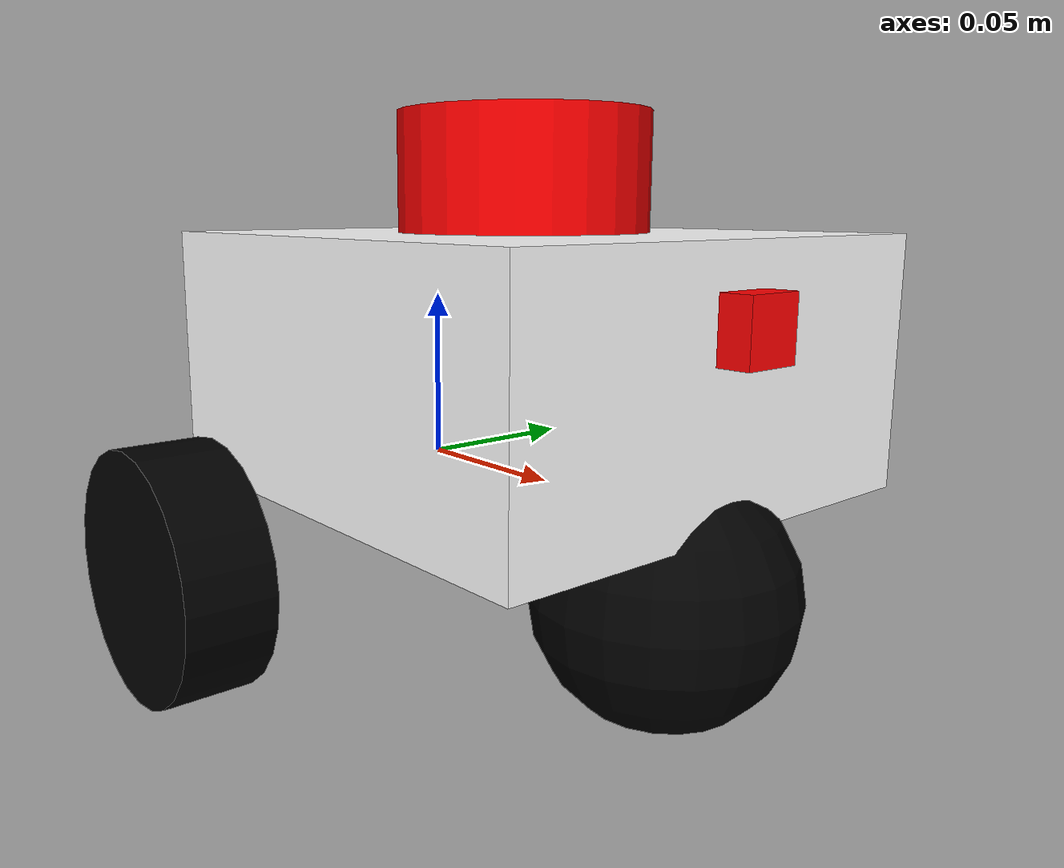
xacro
<!-- autoJetsonBot/src/robot_body/urdf/robot.xacro -->

<?xml version="1.0"?>
<robot xmlns:xacro="http://www.ros.org/wiki/xacro"  name="robot">

    <xacro:arg name='use_ros2_control' default='true'/>
    <xacro:arg name='sim_mode' default='false'/>

    <xacro:include filename="robot_core.xacro" />

    <xacro:if value="$(arg use_ros2_control)">
        <xacro:include filename="ros2_control.xacro" />
    </xacro:if>
    <xacro:unless value="$(arg use_ros2_control)">
        <xacro:include filename="gazebo_control.xacro" />
    </xacro:unless>

    <xacro:include filename="lidar.xacro" />

    <xacro:include filename="camera.xacro" />

</robot>

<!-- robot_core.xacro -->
<robot xmlns:xacro="http://www.ros.org/wiki/xacro" >

<xacro:include filename="inertial_macros.xacro" />

    <!-- COLORS FOR ROBOT PARTS -->
    <material name="grey">
        <color rgba="0.5 0.5 0.5 1"/>
    </material>
    <material name="red">
        <color rgba="1 0 0 1"/>
    </material>
    <material name="green">
        <color rgba="0 1 0 1"/>
    </material>
    <material name="blue">
        <color rgba="0 0 1 1"/>
    </material>
    <material name="yellow">
        <color rgba="1 1 0 1"/>
    </material>
    <material name="orange">
        <color rgba="1 0.5 0 1"/>
    </material>
    <material name="purple">
        <color rgba="0.5 0 0.5 1"/>
    </material>
    <material name="black">
        <color rgba="0 0 0 1"/>
    </material>
    <material name="white">
        <color rgba="1 1 1 1"/>
    </material>

    <!-- ROBOT BASE LINK -->
    <link name="base_link">
    </link>

    <!-- ROBOT CHASSIS LINK-->
    <joint name="chassis_joint" type="fixed">
        <origin xyz="-0.03 0 0" rpy="0 0 0"/>
        <parent link="base_link"/>
        <child link="chassis"/>
    </joint>

    <!-- ROBOT CHASSIS -->
    <link name="chassis">
        <visual>
            <origin xyz="0.0725 0 0.035" rpy="0 0 0"/>
            <geometry>
                <box size="0.145 0.14 0.07"/>
            </geometry>
            <material name="white"/>
        </visual>
        <collision>
            <origin xyz="0.0725 0 0.035" rpy="0 0 0"/>
            <geometry>
                <box size="0.145 0.14 0.07"/>
            </geometry>
        </collision>
        <xacro:inertial_box mass="0.5" x="0.145" y="0.14" z="0.07">
            <origin xyz="0.0725 0 0.035" rpy="0 0 0"/>
        </xacro:inertial_box>
    </link>
    <gazebo reference="chassis">
        <material>Gazebo/White</material>
    </gazebo>

    <!-- ROBOT WHEELS -->

    <!-- LEFT WHEEL -->
    <joint name="left_wheel_joint" type="continuous">
        <origin xyz="0 0.09 -0.02" rpy="-${pi/2} 0 0"/>
        <parent link="base_link"/>
        <child link="left_wheel"/>
        <axis xyz="0 0 1"/>
    </joint>

    <link name="left_wheel">
        <visual>
            <origin xyz="0 0 0" rpy="0 0 0"/>
            <geometry>
                <cylinder radius="0.035" length="0.027"/>
            </geometry>
            <material name="black"/>
        </visual>
        <collision>
            <origin xyz="0 0 0" rpy="0 0 0"/>
            <geometry>
                <cylinder radius="0.035" length="0.027"/>
            </geometry>
        </collision>
        <xacro:inertial_cylinder mass="0.1" length="0.027" radius="0.035">
            <origin xyz="0 0 0" rpy="0 0 0"/>
        </xacro:inertial_cylinder>

    </link>
    <gazebo reference="left_wheel">
        <material>Gazebo/Black</material>
    </gazebo>

    <!-- RIGHT WHEEL -->
    <joint name="right_wheel_joint" type="continuous">
        <origin xyz="0 -0.09 -0.02" rpy="${pi/2} 0 0"/>
        <parent link="base_link"/>
        <child link="right_wheel"/>
        <axis xyz="0 0 -1"/>
    </joint>

    <link name="right_wheel">
        <visual>
            <origin xyz="0 0 0" rpy="0 0 0"/>
            <geometry>
                <cylinder radius="0.035" length="0.025"/>
            </geometry>
            <material name="black"/>
        </visual>
        <collision>
            <origin xyz="0 0 0" rpy="0 0 0"/>
            <geometry>
                <cylinder radius="0.035" length="0.025"/>
            </geometry>
        </collision>
        <xacro:inertial_cylinder mass="0.1" length="0.025" radius="0.035">
            <origin xyz="0 0 0" rpy="0 0 0"/>
        </xacro:inertial_cylinder>
    </link>
    <gazebo reference="right_wheel">
        <material>Gazebo/Black</material>
    </gazebo>

    <!-- CASTER WHEEL -->
    <joint name="caster_wheel_joint" type="fixed">
        <origin xyz="0.095 0 -0.02" rpy="0 0 0"/>
        <parent link="base_link"/>
        <child link="caster_wheel"/>
    </joint>

    <link name="caster_wheel">
        <visual>
            <origin xyz="0 0 0" rpy="0 0 0"/>
            <geometry>
                <sphere radius="0.035"/>
            </geometry>
            <material name="black"/>
        </visual>
        <collision>
            <origin xyz="0 0 0" rpy="0 0 0"/>
            <geometry>
                <sphere radius="0.035"/>
            </geometry>
        </collision>
        <xacro:inertial_sphere mass="0.1" radius="0.035">
            <origin xyz="0 0 0" rpy="0 0 0"/>
        </xacro:inertial_sphere>
    </link>
    <gazebo reference="caster_wheel">
        <material>Gazebo/Black</material>
        <mu1 value="0.001"/>
        <mu2 value="0.001"/>
    </gazebo>

    <!-- ROBOT LIDAR -->
    <joint name="lidar_joint" type="fixed">
        <origin xyz="0.07 0 0.07" rpy="0 0 0"/>
        <parent link="chassis"/>
        <child link="lidar"/>
    </joint>

    <link name="lidar">
        <visual>
            <origin xyz="0 0 0" rpy="0 0 0"/>

            <geometry>
                <cylinder radius="0.035" length="0.065"/>
            </geometry>
            <material name="red"/>
        </visual>
        <collision>
            <origin xyz="0 0 0" rpy="0 0 0"/>

            <geometry>
                <cylinder radius="0.035" length="0.065"/>
            </geometry>
        </collision>
    </link>
    <gazebo reference="lidar">
        <material>Gazebo/Red</material>
    </gazebo>

</robot>

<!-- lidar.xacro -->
<robot xmlns:xacro="http://www.ros.org/wiki/xacro" >

    <!-- laser -->

    <joint name="laser_joint" type="fixed">
        <origin xyz="0.07 0 0.07" rpy="0 0 0"/>
        <parent link="chassis"/>
        <child link="laser_frame"/>
    </joint>

    <link name="laser_frame">
        <visual>
            <origin xyz="0 0 0" rpy="0 0 0"/>
            <geometry>
                <cylinder radius="0.035" length="0.065"/>
            </geometry>
            <material name="red"/>
        </visual>
        <collision>
            <origin xyz="0 0 0" rpy="0 0 0"/>
            <geometry>
                <cylinder radius="0.035" length="0.065"/>
            </geometry>
        </collision>
        <xacro:inertial_cylinder mass="0.1" radius="0.035" length="0.065">
            <origin xyz="0 0 0" rpy="0 0 0"/>
        </xacro:inertial_cylinder>
    </link>
    <gazebo reference="laser_frame">
        <sensor name="laser" type="ray">
            <pose>0 0 0 0 0 0</pose>
            <visualize>false</visualize>
            <update_rate>10</update_rate>
            <ray>
                <scan>
                    <horizontal>
                        <samples>360</samples>
                        <resolution>1</resolution>
                        <min_angle>-3.14</min_angle>
                        <max_angle>3.14</max_angle>
                    </horizontal>
                </scan>
                <range>
                    <min>0.2</min>
                    <max>12</max>
                    <resolution>0.01</resolution>
                </range>
                <noise>
                    <type>gaussian</type>
                    <mean>0.0</mean>
                    <stddev>0.01</stddev>
                </noise>
            </ray>
            <plugin name="gazebo_ros_laser" filename="libgazebo_ros_ray_sensor.so">
                <ros>
                    <argument>scan:=/scan</argument>
                </ros>
                <frameName>laser_frame</frameName>
                <output_type>sensor_msgs/LaserScan</output_type>
            </plugin>
        </sensor>
        <material>Gazebo/Red</material>
    </gazebo>

</robot>

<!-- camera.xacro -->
<!-- camera-->
<robot xmlns:xacro="http://www.ros.org/wiki/xacro" >

    <joint name="camera_joint" type="fixed">
        <origin xyz="0.1455 0 0.05" rpy="0 0 0"/>
        <parent link="chassis"/>
        <child link="camera_link"/>
    </joint>

    <link name="camera_link">
        <visual>
            <origin xyz="0 0 0" rpy="0 0 0"/>
            <geometry>
                <box size="0.017 0.017 0.017"/>
            </geometry>
            <material name="red"/>
        </visual>
        <xacro:inertial_cylinder mass="0.1" radius="0.035" length="0.025">
            <origin xyz="0 0 0" rpy="0 0 0"/>
        </xacro:inertial_cylinder>
    </link>

    <joint name="camera_optical_joint" type="fixed">
        <origin xyz="0.005 0 0" rpy="${-pi/2} 0 ${-pi/2}"/>
        <parent link="camera_link"/>
        <child link="camera_optical_link"/>
    </joint>

    <link name="camera_optical_link"></link>

    <gazebo reference="camera_link">
        <material>Gazebo/Red</material>
        <sensor name="camera" type="camera">
            <pose>0 0 0 0 0 0</pose>
            <visualize>true</visualize>
            <update_rate>10</update_rate>
            <camera>
                <horizontal_fov>1.3962634</horizontal_fov>
                <image>
                    <width>640</width>
                    <height>480</height>
                    <format>R8G8B8</format>
                </image>
                <clip>
                    <near>0.1</near>
                    <far>100</far>
                </clip>
            </camera>
            <plugin name="camera_controller" filename="libgazebo_ros_camera.so">
                <frame_name>camera_optical_link</frame_name>
            </plugin>
        </sensor>
    </gazebo>
</robot>
